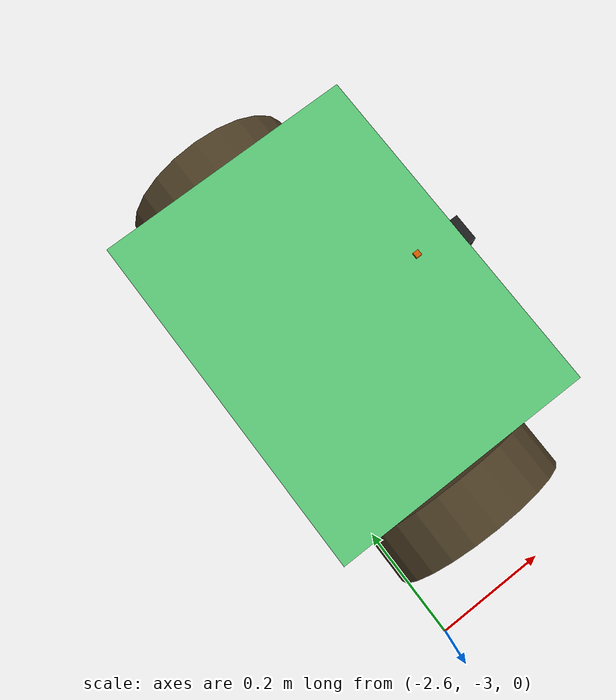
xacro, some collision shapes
<?xml version='1.0'?>

<robot name="my_robot" xmlns:xacro="http://www.ros.org/wiki/xacro">

<xacro:include filename="$(find my_robot)/urdf/my_robot.gazebo"/>

<material name="green">
  <color rgba="0.36 0.8 0.47 1.0"/>
</material>

<material name="brown">
  <color rgba="${79/255} ${64/255} ${39/255} 1.0"/>
</material>

<gazebo reference="chassis">
  <material>Gazebo/Green</material>
</gazebo>

<gazebo reference="robot_footprint">
  <material>Gazebo/Green</material>
</gazebo>

<gazebo reference="left_wheel">
  <material>Gazebo/FlatBlack</material>
</gazebo>

<gazebo reference="right_wheel">
  <material>Gazebo/FlatBlack</material>
</gazebo>

<gazebo reference="camera">
  <material>Gazebo/FlatBlack</material>
</gazebo>

  <link name="robot_footprint"></link>

  <joint name="robot_footprint_joint" type="fixed">
    <origin xyz="-2.43 -2.49 0.0" rpy="0 0 0" />
    <parent link="robot_footprint"/>
    <child link="chassis" />
  </joint>

<!-- Chassis -->

  <link name='chassis'>
    <pose>0 0 0.7 0 0 0</pose>

    <inertial>
      <mass value="15.0"/>
      <origin xyz="0 0 0" rpy=" 0 0 0"/>
      <inertia
          ixx="0.1" ixy="0" ixz="0"
          iyy="0.1" iyz="0"
          izz="0.1"
      />
    </inertial>

    <collision name='collision'>
      <origin xyz="0 0 0" rpy=" 0 0 0"/>
      <geometry>
        <box size=".45 .6 .4"/>
      </geometry>
    </collision>

    <visual name='chassis_visual'>
      <origin xyz="0 0 0" rpy=" 0 0 0"/>
      <geometry>
        <box size=".45 .6 .4"/>
      </geometry>
      <material name="green" />
    </visual>

    <collision> <!--  name='back_caster_collision'-->
      <origin xyz="-0.15 0 -0.21" rpy=" 0 0 0"/>
      <geometry>
        <sphere radius="0.0599"/>
      </geometry>
    </collision>

    <visual> <!-- name='back_caster_visual'-->
      <origin xyz="-0.15 0 -0.21" rpy=" 0 0 0"/>
      <geometry>
        <sphere radius="0.06"/>
      </geometry>
    </visual>

    <collision> <!--name='front_caster_collision'-->
      <origin xyz="0.15 0 -0.21" rpy=" 0 0 0"/>
      <geometry>
        <sphere radius="0.0599"/>
      </geometry>
    </collision>

    <visual> <!--name='front_caster_visual'-->
      <origin xyz="0.15 0 -0.21" rpy=" 0 0 0"/>
      <geometry>
        <sphere radius="0.06"/>
      </geometry>
    </visual>

  </link>

<!-- Left Wheel -->

<link name='left_wheel'>
<inertial>
      <mass value="5.0"/>
      <!--origin xyz="-0.12 0 0" rpy=" 0 0 0"/-->
      <origin xyz="0 0 0" rpy=" 0 0 0"/>
      <inertia
          ixx="0.1" ixy="0" ixz="0"
          iyy="0.1" iyz="0"
          izz="0.1"
      />
    </inertial>

    <collision name='left_wheel_collision'>
      <!--origin xyz="0 0.02 0.11" rpy=" 0 1.5707 1.5707"/-->
      <origin xyz="0 0.02 0" rpy=" 0 1.5707 1.5707"/>
      <geometry>
        <cylinder radius="0.18" length="0.1"/>
      </geometry>
    </collision>

    <visual name='left_wheel_visual'>
      <!--origin xyz="0 0.02 0.11" rpy=" 0 1.5707 1.5707"/-->
      <origin xyz="0 0.02 0" rpy=" 0 1.5707 1.5707"/>
      <geometry>
        <cylinder radius="0.18" length="0.1"/>
      </geometry>
      <material name="brown" />
    </visual>

</link>

 <joint type="continuous" name="left_wheel_hinge">
    <origin xyz="0 0.35 -0.1" rpy="0 0 0"/>
    <child link="left_wheel"/>
    <parent link="chassis"/>
    <axis xyz="0 1 0" rpy="0 0 0"/>
    <limit effort="10000" velocity="1000"/>
    <dynamics damping="1.0" friction="1.0"/>
  </joint>

<!-- Right Wheel -->

<link name='right_wheel'>
<inertial>
      <mass value="5.0"/>
      <!--origin xyz="-0.12 0 0" rpy=" 0 0 0"/-->
      <origin xyz="0 0 0" rpy=" 0 0 0"/>
      <inertia
          ixx="0.1" ixy="0" ixz="0"
          iyy="0.1" iyz="0"
          izz="0.1"
      />
    </inertial>

    <collision name='right_wheel_collision'>
      <!--origin xyz="0 -0.02 0.11" rpy=" 0 1.5707 1.5707"/-->
      <origin xyz="0 -0.02 0" rpy=" 0 1.5707 1.5707"/>
      <geometry>
        <cylinder radius="0.18" length="0.1"/>
      </geometry>
    </collision>

    <visual name='right_wheel_visual'>
      <!--origin xyz="0 -0.02 0.11" rpy=" 0 1.5707 1.5707"/-->
      <origin xyz="0 -0.02 0" rpy=" 0 1.5707 1.5707"/>
      <geometry>
        <cylinder radius="0.18" length="0.1"/>
      </geometry>
      <material name="brown" />
    </visual>

</link>

 <joint type="continuous" name="right_wheel_hinge">
    <origin xyz="0 -0.35 -0.1" rpy="0 0 0"/>
    <!--origin xyz="0 0 0" rpy="0 0 0"/-->
    <child link="right_wheel"/>
    <parent link="chassis"/>
    <axis xyz="0 1 0" rpy="0 0 0"/>
    <limit effort="10000" velocity="1000"/>
    <dynamics damping="1.0" friction="1.0"/>
  </joint>

<!-- Camera -->
<link name='camera'>

<inertial>
      <mass value="0.1"/>
      <origin xyz="0 0 0" rpy=" 0 0 0"/>
      <inertia
          ixx="1e-6" ixy="0" ixz="0"
          iyy="1e-6" iyz="0"
          izz="1e-6"
      />
    </inertial>

    <collision name='camera_collision'>
      <origin xyz="0 0 0" rpy=" 0 0 0"/>
      <geometry>
        <box size="0.05 0.05 0.05"/>
      </geometry>
    </collision>

    <visual name='camera_visual'>
      <origin xyz="0 0 0" rpy=" 0 0 0"/>
      <geometry>
        <box size="0.05 0.05 0.05"/>
      </geometry>
    </visual>

</link>

 <joint type="fixed" name="camera_joint">
    <origin xyz="0.24 0 0.1" rpy="0 0 0"/>
    <child link="camera"/>
    <parent link="chassis"/>
    <axis xyz="0 1 0" rpy="0 0 0"/>
    <limit effort="10000" velocity="1000"/>
    <dynamics damping="1.0" friction="1.0"/>
  </joint>

<!-- Lidar -->

<link name='hokuyo'>

<inertial>
      <mass value="1e-5"/>
      <origin xyz="0 0 0" rpy=" 0 0 0"/>
      <inertia
          ixx="1e-6" ixy="0" ixz="0"
          iyy="1e-6" iyz="0"
          izz="1e-6"
      />
    </inertial>

    <collision name='lidar_collision'>
      <origin xyz="0 0 0" rpy=" 0 0 0"/>
      <geometry>
        <box size="0.01 0.01 0.01"/>
      </geometry>
    </collision>

    <visual name='lidar_visual'>
      <origin xyz="0 0 0" rpy=" 0 0 0"/>
      <geometry>
        <mesh filename="package://my_robot/meshes/hokuyo.dae"/>
      </geometry>
    </visual>

</link>

 <joint type="fixed" name="hokuyo_joint">
    <origin xyz="0.15 0 0.2" rpy="0 0 0"/>
    <child link="hokuyo"/>
    <parent link="chassis"/>
    <axis xyz="0 1 0" rpy="0 0 0"/>
    <limit effort="10000" velocity="1000"/>
    <dynamics damping="1.0" friction="1.0"/>
  </joint>

</robot>
